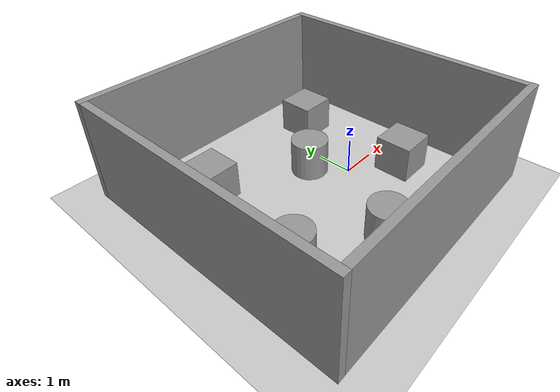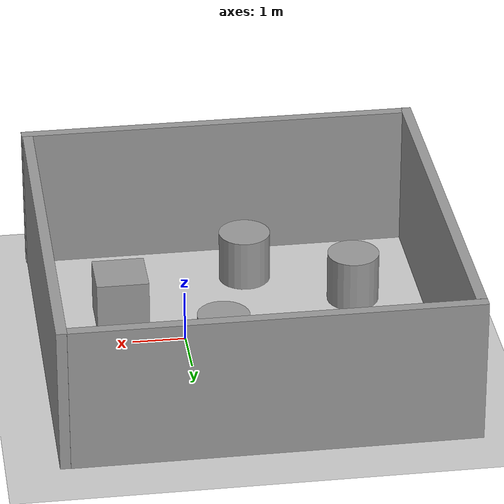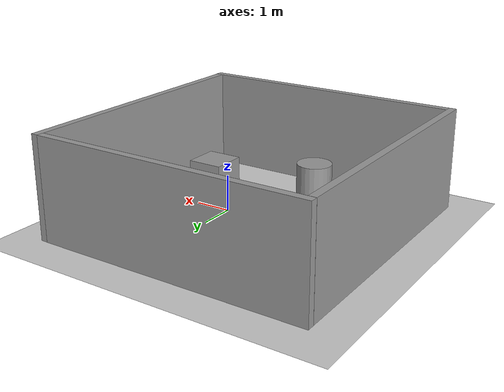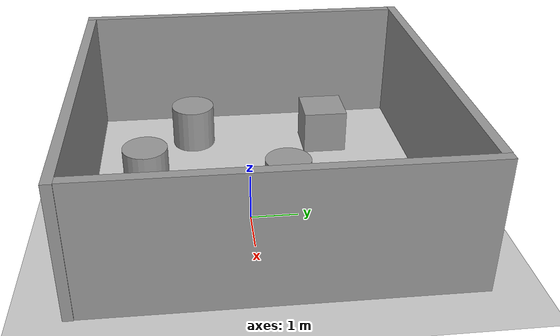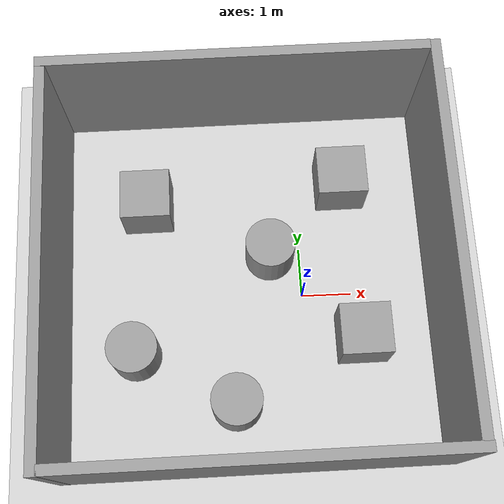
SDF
<sdf version="1.7">
 <world name="default">
  <light name="sun" type="directional">
   <pose>0 0 10 0 -0 0</pose>
   <diffuse>0.8 0.8 0.8 1</diffuse>
   <specular>0.2 0.2 0.2 1</specular>
   <attenuation>
    <range>1000</range>
    <constant>0.9</constant>
    <linear>0.01</linear>
    <quadratic>0.001</quadratic>
   </attenuation>
   <direction>-0.5 0.1 -0.9</direction>
   <spot><inner_angle>0</inner_angle><outer_angle>0</outer_angle><falloff>0</falloff></spot>
  </light>
  <model name="ground_plane">
   <static>1</static>
   <link name="link">
    <collision name="collision">
     <geometry><plane><normal>0 0 1</normal><size>100 100</size></plane></geometry>
     <surface>
      <contact><collide_bitmask>65535</collide_bitmask></contact>
      <friction><ode><mu>100</mu><mu2>50</mu2></ode></friction>
     </surface>
    </collision>
    <visual name="visual">
     <cast_shadows>0</cast_shadows>
     <geometry><plane><normal>0 0 1</normal><size>100 100</size></plane></geometry>
     <material>
      <script><uri>file://media/materials/scripts/gazebo.material</uri><name>Gazebo/Grey</name></script>
     </material>
    </visual>
   </link>
  </model>
  <gravity>0 0 -9.8</gravity>
  <magnetic_field>6e-06 2.3e-05 -4.2e-05</magnetic_field>
  <atmosphere type="adiabatic"/>
  <physics type="ode">
   <max_step_size>0.001</max_step_size>
   <real_time_factor>1</real_time_factor>
   <real_time_update_rate>1000</real_time_update_rate>
  </physics>
  <scene><ambient>0.4 0.4 0.4 1</ambient><background>0.7 0.7 0.7 1</background><shadows>1</shadows></scene>
  <spherical_coordinates>
   <surface_model>EARTH_WGS84</surface_model>
   <latitude_deg>0</latitude_deg>
   <longitude_deg>0</longitude_deg>
   <elevation>0</elevation>
   <heading_deg>0</heading_deg>
  </spherical_coordinates>
  <model name="grey_wall">
   <static>1</static>
   <link name="link">
    <pose>0 0 1.4 0 -0 0</pose>
    <collision name="collision"><geometry><box><size>7.5 0.2 2.8</size></box></geometry></collision>
    <visual name="visual">
     <cast_shadows>0</cast_shadows>
     <geometry><box><size>7.5 0.2 2.8</size></box></geometry>
     <material>
      <script>
       <uri>model://grey_wall/materials/scripts</uri>
       <uri>model://grey_wall/materials/textures</uri>
       <name>vrc/grey_wall</name>
      </script>
     </material>
    </visual>
   </link>
   <pose>-1.18767 4.07156 0 0 -0 0</pose>
  </model>
  <model name="grey_wall_0">
   <static>1</static>
   <link name="link">
    <pose>0 0 1.4 0 -0 0</pose>
    <collision name="collision"><geometry><box><size>7.5 0.2 2.8</size></box></geometry></collision>
    <visual name="visual">
     <cast_shadows>0</cast_shadows>
     <geometry><box><size>7.5 0.2 2.8</size></box></geometry>
     <material>
      <script>
       <uri>model://grey_wall/materials/scripts</uri>
       <uri>model://grey_wall/materials/textures</uri>
       <name>vrc/grey_wall</name>
      </script>
     </material>
    </visual>
   </link>
   <pose>-0.995958 -3.42818 0 0 -0 0</pose>
  </model>
  <model name="grey_wall_1">
   <static>1</static>
   <link name="link">
    <pose>0 0 1.4 0 -0 0</pose>
    <collision name="collision"><geometry><box><size>7.5 0.2 2.8</size></box></geometry></collision>
    <visual name="visual">
     <cast_shadows>0</cast_shadows>
     <geometry><box><size>7.5 0.2 2.8</size></box></geometry>
     <material>
      <script>
       <uri>model://grey_wall/materials/scripts</uri>
       <uri>model://grey_wall/materials/textures</uri>
       <name>vrc/grey_wall</name>
      </script>
     </material>
    </visual>
   </link>
   <pose>-4.82808 0.217242 0 0 0 -1.56856</pose>
  </model>
  <model name="grey_wall_2">
   <static>1</static>
   <link name="link">
    <pose>0 0 1.4 0 -0 0</pose>
    <collision name="collision"><geometry><box><size>7.5 0.2 2.8</size></box></geometry></collision>
    <visual name="visual">
     <cast_shadows>0</cast_shadows>
     <geometry><box><size>7.5 0.2 2.8</size></box></geometry>
     <material>
      <script>
       <uri>model://grey_wall/materials/scripts</uri>
       <uri>model://grey_wall/materials/textures</uri>
       <name>vrc/grey_wall</name>
      </script>
     </material>
    </visual>
   </link>
   <pose>2.64724 0.414012 0 0 0 -1.57318</pose>
  </model>
  <model name="unit_box">
   <pose>-3.09966 2.04429 0.499995 0 -1e-05 0</pose>
   <link name="link">
    <inertial>
     <mass>1</mass>
     <inertia>
      <ixx>0.166667</ixx>
      <ixy>0</ixy>
      <ixz>0</ixz>
      <iyy>0.166667</iyy>
      <iyz>0</iyz>
      <izz>0.166667</izz>
     </inertia>
    </inertial>
    <collision name="collision"><geometry><box><size>1 1 1</size></box></geometry></collision>
    <visual name="visual">
     <geometry><box><size>1 1 1</size></box></geometry>
     <material>
      <script><name>Gazebo/Grey</name><uri>file://media/materials/scripts/gazebo.material</uri></script>
     </material>
    </visual>
   </link>
  </model>
  <model name="unit_cylinder">
   <pose>-1.43586 -2.185 0.499998 3e-06 -3e-06 0</pose>
   <link name="link">
    <inertial>
     <mass>1</mass>
     <inertia><ixx>0.145833</ixx><ixy>0</ixy><ixz>0</ixz><iyy>0.145833</iyy><iyz>0</iyz><izz>0.125</izz></inertia>
    </inertial>
    <collision name="collision">
     <geometry><cylinder><radius>0.5</radius><length>1</length></cylinder></geometry>
    </collision>
    <visual name="visual">
     <geometry><cylinder><radius>0.5</radius><length>1</length></cylinder></geometry>
     <material>
      <script><name>Gazebo/Grey</name><uri>file://media/materials/scripts/gazebo.material</uri></script>
     </material>
    </visual>
   </link>
  </model>
  <model name="unit_cylinder_0">
   <pose>-0.621765 0.8706 0.499993 -3e-06 4e-06 0</pose>
   <link name="link">
    <inertial>
     <mass>1</mass>
     <inertia><ixx>0.145833</ixx><ixy>0</ixy><ixz>0</ixz><iyy>0.145833</iyy><iyz>0</iyz><izz>0.125</izz></inertia>
    </inertial>
    <collision name="collision">
     <geometry><cylinder><radius>0.5</radius><length>1</length></cylinder></geometry>
    </collision>
    <visual name="visual">
     <geometry><cylinder><radius>0.5</radius><length>1</length></cylinder></geometry>
     <material>
      <script><name>Gazebo/Grey</name><uri>file://media/materials/scripts/gazebo.material</uri></script>
     </material>
    </visual>
   </link>
  </model>
  <model name="unit_box_0">
   <pose>1.12366 -0.950265 0.499995 -1e-05 -0 -0</pose>
   <link name="link">
    <inertial>
     <mass>1</mass>
     <inertia>
      <ixx>0.166667</ixx>
      <ixy>0</ixy>
      <ixz>0</ixz>
      <iyy>0.166667</iyy>
      <iyz>0</iyz>
      <izz>0.166667</izz>
     </inertia>
    </inertial>
    <collision name="collision"><geometry><box><size>1 1 1</size></box></geometry></collision>
    <visual name="visual">
     <geometry><box><size>1 1 1</size></box></geometry>
     <material>
      <script><name>Gazebo/Grey</name><uri>file://media/materials/scripts/gazebo.material</uri></script>
     </material>
    </visual>
   </link>
  </model>
  <model name="unit_cylinder_1">
   <pose>-3.40434 -1.09418 0.499992 -3e-06 4e-06 0</pose>
   <link name="link">
    <inertial>
     <mass>1</mass>
     <inertia><ixx>0.145833</ixx><ixy>0</ixy><ixz>0</ixz><iyy>0.145833</iyy><iyz>0</iyz><izz>0.125</izz></inertia>
    </inertial>
    <collision name="collision">
     <geometry><cylinder><radius>0.5</radius><length>1</length></cylinder></geometry>
    </collision>
    <visual name="visual">
     <geometry><cylinder><radius>0.5</radius><length>1</length></cylinder></geometry>
     <material>
      <script><name>Gazebo/Grey</name><uri>file://media/materials/scripts/gazebo.material</uri></script>
     </material>
    </visual>
   </link>
  </model>
  <model name="unit_box_1">
   <pose>0.92072 2.36639 0.499995 -1e-05 -0 0</pose>
   <link name="link">
    <inertial>
     <mass>1</mass>
     <inertia>
      <ixx>0.166667</ixx>
      <ixy>0</ixy>
      <ixz>0</ixz>
      <iyy>0.166667</iyy>
      <iyz>0</iyz>
      <izz>0.166667</izz>
     </inertia>
    </inertial>
    <collision name="collision"><geometry><box><size>1 1 1</size></box></geometry></collision>
    <visual name="visual">
     <geometry><box><size>1 1 1</size></box></geometry>
     <material>
      <script><name>Gazebo/Grey</name><uri>file://media/materials/scripts/gazebo.material</uri></script>
     </material>
    </visual>
   </link>
  </model>
 </world>
</sdf>
